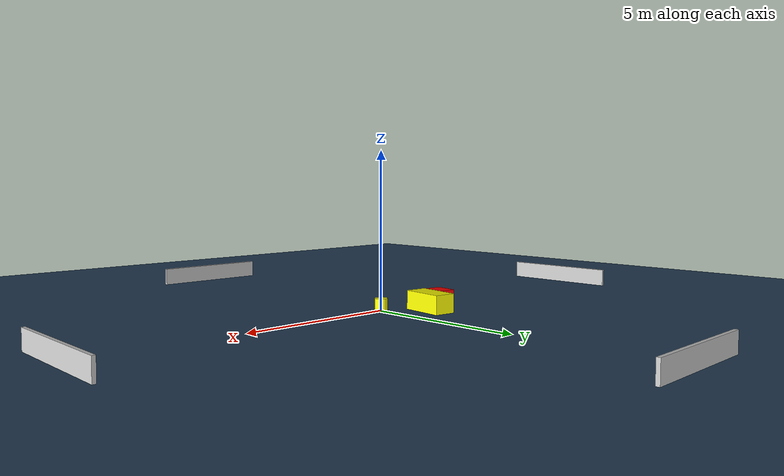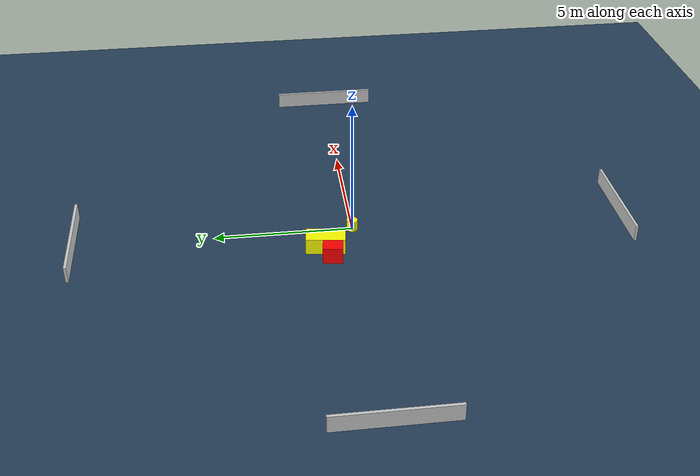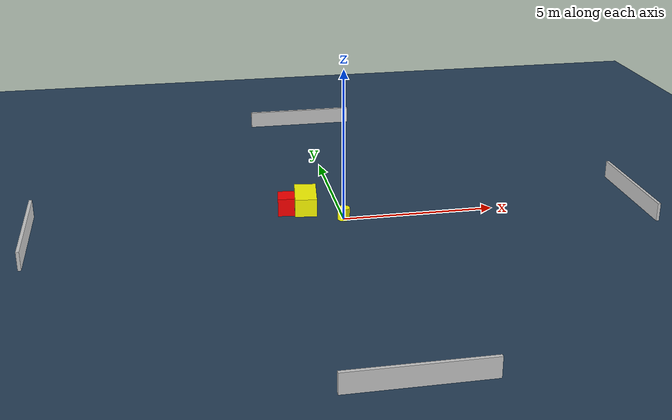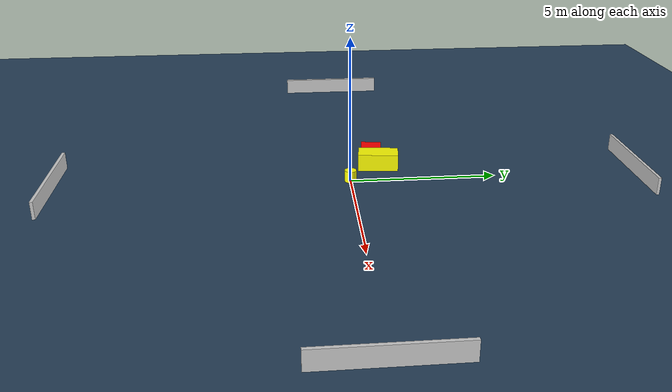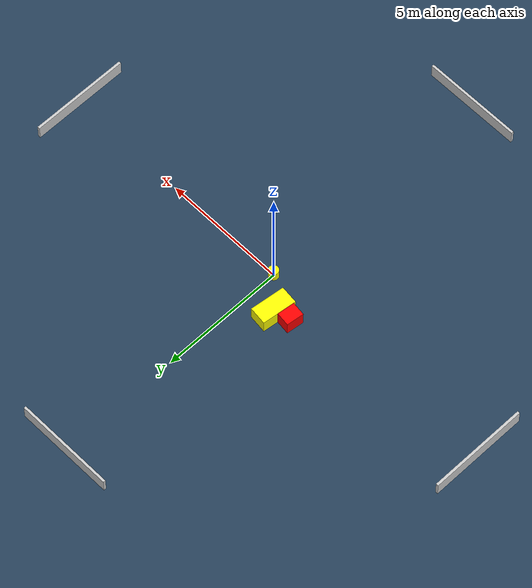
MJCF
<?xml version="1.0" ?>
<mujoco model="generated_environment">
  <option timestep="0.01" integrator="RK4" cone="elliptic"/>
  <default>
    <geom density="1"/>
  </default>
  <asset>
    <texture builtin="gradient" height="3072" name="skybox" rgb1="0.3 0.5 0.7" rgb2="0 0 0" type="skybox" width="512"/>
    <texture builtin="checker" height="300" name="groundplane" rgb1="0.2 0.3 0.4" rgb2="0.1 0.2 0.3" type="2d" width="300"/>
    <material name="groundplane" reflectance="0.2" texrepeat="5 5" texture="groundplane"/>
  </asset>
  <worldbody>
    <light dir="0 0 -1" directional="true" pos="0 0 1.5"/>
    <geom condim="3" friction="0.5 0.005 0.001" material="groundplane" name="floor" pos="0 0 0" size="0 0 0.05" type="plane"/>
    <body name="walls">
      <geom name="wall_1" condim="4" pos="-10.0 0.0 0.3" rgba="0.800000011920929 0.800000011920929 0.800000011920929 1.0" size="0.05 2.0 0.3" type="box"/>
      <geom name="wall_2" condim="4" pos="10.0 0.0 0.3" rgba="0.800000011920929 0.800000011920929 0.800000011920929 1.0" size="0.05 2.0 0.3" type="box"/>
      <geom name="wall_3" condim="4" pos="0.0 -10.0 0.3" rgba="0.800000011920929 0.800000011920929 0.800000011920929 1.0" size="2.0 0.05 0.3" type="box"/>
      <geom name="wall_4" condim="4" pos="0.0 10.0 0.3" rgba="0.800000011920929 0.800000011920929 0.800000011920929 1.0" size="2.0 0.05 0.3" type="box"/>
    </body>
    <body name="robot">
      <joint name="joint_x" type="slide" pos="0 0 0" axis="1 0 0"/>
      <joint name="joint_y" type="slide" pos="0 0 0" axis="0 1 0"/>
      <geom name="robot" type="cylinder" pos="0.0 0.0 0.2" size="0.2 0.2 0.0" mass="5.0" friction="1.0 0.005 0.0001" condim="4" rgba="1.0 1.0 0.0 1.0"/>
    </body>
    <body name="obstacle_1_movable">
      <geom name="obstacle_1_movable" condim="4" pos="-1.093812238165731 1.0806834187935315 0.3" euler="0 0 353.16440417122584" friction="0.0 0.005 0.001" rgba="1.0 1.0 0.0 1.0" size="0.3591807194358954 0.7004528005713115 0.3" type="box" mass="0.1"/>
      <joint type="free"/>
    </body>
    <body name="obstacle_2_static">
      <geom name="obstacle_2_static" condim="4" pos="-1.762935124031635 0.8970484751559367 0.3" euler="0 0 172.98302996018194" friction="0.0 0.005 0.001" rgba="1.0 0.0 0.0 1.0" size="0.2745255805746485 0.35112712075047037 0.3" type="box"/>
    </body>
  </worldbody>
  <actuator>
    <motor name="actuator_x" joint="joint_x" gear="1" ctrlrange="-1 1"/>
    <motor name="actuator_y" joint="joint_y" gear="1" ctrlrange="-1 1"/>
  </actuator>
</mujoco>
